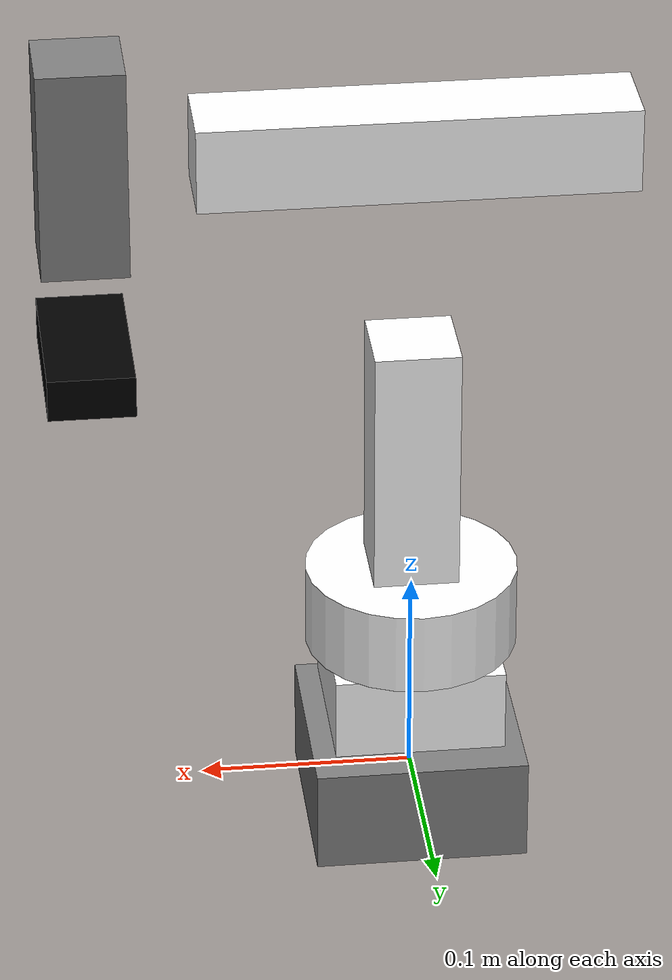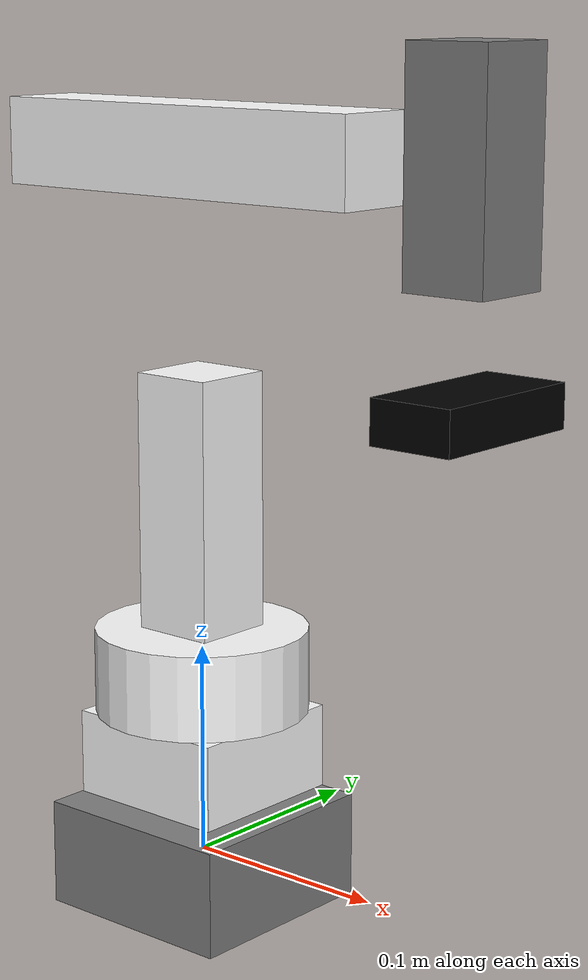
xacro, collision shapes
<?xml version="1.0"?>
<robot xmlns:xacro="http://www.ros.org/wiki/xacro" name="robot_arm">

  <xacro:property name="PI" value="3.14159265358979"/>

  <!-- Materials -->
  <material name="white">
    <color rgba="1 1 1 1"/>
  </material>
  <material name="grey">
    <color rgba="0.5 0.5 0.5 1"/>
  </material>
  <material name="black">
    <color rgba="0 0 0 1"/>
  </material>

  <!-- World Link -->
  <link name="world"/>

  <!-- BASE Link -->
  <link name="basement">
    <visual>
      <origin rpy="0 0 0" xyz="-0.5 -0.5 0"/>
      <geometry>
        <mesh filename="package://robot_arm_description/meshes/basement.STL" scale="0.01 0.01 0.01"/>
      </geometry>
      <material name="grey"/>
    </visual>
    <collision>
      <origin rpy="0 0 0" xyz="0 0 0"/>
      <geometry>
        <box size="0.1 0.1 0.05"/>
      </geometry>
    </collision>
    <inertial>
      <mass value="1.0"/>
      <inertia ixx="0.01" ixy="0" ixz="0" iyy="0.01" iyz="0" izz="0.01"/>
    </inertial>
  </link>

  <!-- World to Basement Joint -->
  <joint name="world_to_basement" type="fixed">
    <parent link="world"/>
    <child link="basement"/>
    <origin rpy="0 0 0" xyz="0 0 0"/>
  </joint>

  <!-- Base Link -->
  <link name="base_link">
    <visual>
      <origin rpy="0 0 0" xyz="-0.39 -0.39 -0.56"/>
      <geometry>
        <mesh filename="package://robot_arm_description/meshes/base_plate.STL" scale="0.01 0.01 0.01"/>
      </geometry>
      <material name="white"/>
    </visual>
    <collision>
      <origin rpy="0 0 0" xyz="0 0 0"/>
      <geometry>
        <box size="0.08 0.08 0.04"/>
      </geometry>
    </collision>
    <inertial>
      <mass value="0.5"/>
      <inertia ixx="0.005" ixy="0" ixz="0" iyy="0.005" iyz="0" izz="0.005"/>
    </inertial>
  </link>

  <!-- Basement to Base Link Joint -->
  <joint name="basement_to_base_link" type="fixed">
    <parent link="basement"/>
    <child link="base_link"/>
    <origin rpy="0 0 0" xyz="0 0 0.05"/>
  </joint>

  <!-- Base Plate -->
  <link name="base_plate">
    <visual>
      <origin rpy="0 0 0" xyz="-0.39 -0.39 -0.56"/>
      <geometry>
        <mesh filename="package://robot_arm_description/meshes/round_plate.STL" scale="0.01 0.01 0.01"/>
      </geometry>
      <material name="white"/>
    </visual>
    <collision>
      <origin rpy="0 0 0" xyz="0 0 0"/>
      <geometry>
        <cylinder length="0.04" radius="0.05"/>
      </geometry>
    </collision>
    <inertial>
      <mass value="0.3"/>
      <inertia ixx="0.003" ixy="0" ixz="0" iyy="0.003" iyz="0" izz="0.003"/>
    </inertial>
  </link>

  <!-- Base Link to Base Plate Joint -->
  <joint name="joint1" type="revolute">
    <parent link="base_link"/>
    <child link="base_plate"/>
    <origin rpy="0 0 0" xyz="0 0 0.04"/>
    <axis xyz="0 0 1"/>
    <limit effort="100" lower="-3.14" upper="3.14" velocity="1.0"/>
  </joint>

  <!-- Forward Drive Arm -->
  <link name="forward_drive_arm">
    <visual>
      <origin rpy="0 -${PI/2} ${PI/2}" xyz="0.19 0.06 -0.08"/>
      <geometry>
        <mesh filename="package://robot_arm_description/meshes/forward_drive_arm.STL" scale="0.01 0.01 0.01"/>
      </geometry>
      <material name="white"/>
    </visual>
    <collision>
      <origin rpy="0 0 0" xyz="0 0 0"/>
      <geometry>
        <box size="0.04 0.04 0.2"/>
      </geometry>
    </collision>
    <inertial>
      <mass value="0.5"/>
      <inertia ixx="0.005" ixy="0" ixz="0" iyy="0.005" iyz="0" izz="0.005"/>
    </inertial>
  </link>

  <!-- Base Plate to Forward Drive Arm Joint -->
  <joint name="joint2" type="revolute">
    <parent link="base_plate"/>
    <child link="forward_drive_arm"/>
    <origin rpy="0 0 0" xyz="0 0 0.04"/>
    <axis xyz="1 0 0"/>
    <limit effort="100" lower="-1.57" upper="1.57" velocity="1.0"/>
  </joint>

  <!-- Horizontal Arm -->
  <link name="horizontal_arm">
    <visual>
      <origin rpy="${PI/2} 0 ${PI/2}" xyz="-0.03 -0.4 -0.06"/>
      <geometry>
        <mesh filename="package://robot_arm_description/meshes/horizontal_arm.STL" scale="0.01 0.01 0.01"/>
      </geometry>
      <material name="white"/>
    </visual>
    <collision>
      <origin rpy="0 0 0" xyz="0 0 0"/>
      <geometry>
        <box size="0.2 0.04 0.04"/>
      </geometry>
    </collision>
    <inertial>
      <mass value="0.4"/>
      <inertia ixx="0.004" ixy="0" ixz="0" iyy="0.004" iyz="0" izz="0.004"/>
    </inertial>
  </link>

  <!-- Forward Drive Arm to Horizontal Arm Joint -->
  <joint name="joint3" type="revolute">
    <parent link="forward_drive_arm"/>
    <child link="horizontal_arm"/>
    <origin rpy="0 0 0" xyz="0 0 0.2"/>
    <axis xyz="1 0 0"/>
    <limit effort="100" lower="-1.57" upper="1.57" velocity="1.0"/>
  </joint>

  <!-- Claw Support -->
  <link name="claw_support">
    <visual>
      <origin rpy="0 0 ${PI/2}" xyz="0 -0.05 -0.15"/>
      <geometry>
        <mesh filename="package://robot_arm_description/meshes/claw_support.STL" scale="0.01 0.01 0.01"/>
      </geometry>
      <material name="grey"/>
    </visual>
    <collision>
      <origin rpy="0 0 0" xyz="0 0 0"/>
      <geometry>
        <box size="0.04 0.04 0.1"/>
      </geometry>
    </collision>
    <inertial>
      <mass value="0.2"/>
      <inertia ixx="0.002" ixy="0" ixz="0" iyy="0.002" iyz="0" izz="0.002"/>
    </inertial>
  </link>

  <!-- Horizontal Arm to Claw Support Joint -->
  <joint name="joint4" type="revolute">
    <parent link="horizontal_arm"/>
    <child link="claw_support"/>
    <origin rpy="0 0 0" xyz="0.15 0 0"/>
    <axis xyz="0 0 1"/>
    <limit effort="100" lower="-1.57" upper="1.57" velocity="1.0"/>
  </joint>

  <!-- Gripper Right -->
  <link name="gripper_right">
    <visual>
      <origin rpy="0 0 -${PI/2}" xyz="-0.1 0.5 -0.1"/>
      <geometry>
        <mesh filename="package://robot_arm_description/meshes/right_finger.STL" scale="0.01 0.01 0.01"/>
      </geometry>
      <material name="black"/>
    </visual>
    <collision>
      <origin rpy="0 0 0" xyz="0 0 0"/>
      <geometry>
        <box size="0.04 0.08 0.02"/>
      </geometry>
    </collision>
    <inertial>
      <mass value="0.1"/>
      <inertia ixx="0.001" ixy="0" ixz="0" iyy="0.001" iyz="0" izz="0.001"/>
    </inertial>
  </link>

  <!-- Claw Support to Gripper Right Joint -->
  <joint name="joint5" type="prismatic">
    <parent link="claw_support"/>
    <child link="gripper_right"/>
    <origin rpy="0 0 0" xyz="0 0 -0.1"/>
    <axis xyz="1 0 0"/>
    <limit effort="100" lower="0" upper="0.08" velocity="0.5"/>
  </joint>

  <!-- Gripper Left -->
  <link name="gripper_left">
    <visual>
      <origin rpy="0 0 -${PI/2}" xyz="-0.04 0.5 -0.1"/>
      <geometry>
        <mesh filename="package://robot_arm_description/meshes/left_finger.STL" scale="0.01 0.01 0.01"/>
      </geometry>
      <material name="black"/>
    </visual>
    <collision>
      <origin rpy="0 0 0" xyz="0 0 0"/>
      <geometry>
        <box size="0.04 0.08 0.02"/>
      </geometry>
    </collision>
    <inertial>
      <mass value="0.1"/>
      <inertia ixx="0.001" ixy="0" ixz="0" iyy="0.001" iyz="0" izz="0.001"/>
    </inertial>
  </link>

  <!-- Claw Support to Gripper Left Joint -->
  <joint name="joint6" type="prismatic">
    <parent link="claw_support"/>
    <child link="gripper_left"/>
    <origin rpy="0 0 0" xyz="0 0 -0.1"/>
    <axis xyz="-1 0 0"/>
    <limit effort="100" lower="0" upper="0.08" velocity="0.5"/>
  </joint>

</robot>
